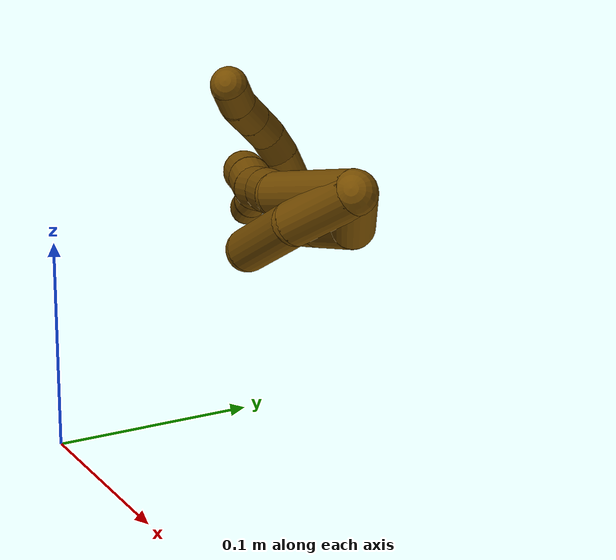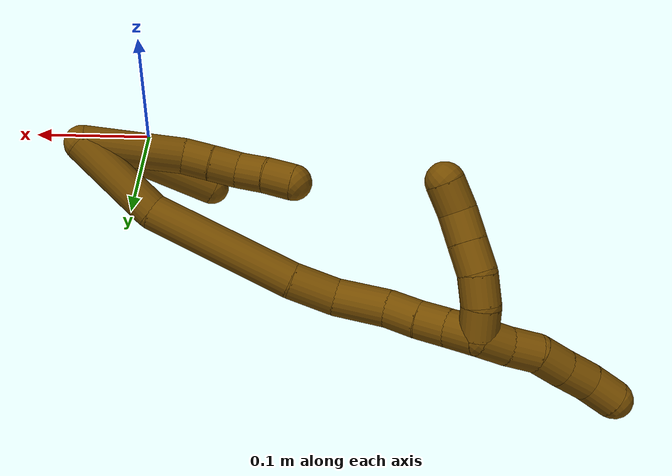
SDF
<sdf version="1.7">
 <world name="default">
  <model name="12">
   <static>0</static>
   <link name="12">
    <collision name="collision-cylinder-e_1_2_8">
     <pose>-0.020462 0.013772 0.024603 -0.510297 -0.627791 0.168945</pose>
     <geometry><cylinder><radius>0.0125</radius><length>0.069676</length></cylinder></geometry>
     <surface>
      <friction><ode><mu>1.16</mu><mu2>1.16</mu2><slip1>0</slip1><slip2>0</slip2></ode></friction>
      <contact><ode><kp>1e+06</kp><kd>1</kd><max_vel>0</max_vel><min_depth>0.001</min_depth></ode></contact>
     </surface>
    </collision>
    <visual name="visual-cylinder-e_1_2_8">
     <pose>-0.020462 0.013772 0.024603 -0.510297 -0.627791 0.168945</pose>
     <geometry><cylinder><radius>0.0125</radius><length>0.069676</length></cylinder></geometry>
     <material><ambient>0.466667 0.301961 0 1</ambient></material>
    </visual>
    <collision name="collision-cylinder-e_2_8_9">
     <pose>-0.046044 0.028628 0.057856 -0.124756 -0.530951 0.033961</pose>
     <geometry><cylinder><radius>0.0125</radius><length>0.02022</length></cylinder></geometry>
     <surface>
      <friction><ode><mu>1.16</mu><mu2>1.16</mu2><slip1>0</slip1><slip2>0</slip2></ode></friction>
      <contact><ode><kp>1e+06</kp><kd>1</kd><max_vel>0</max_vel><min_depth>0.001</min_depth></ode></contact>
     </surface>
    </collision>
    <visual name="visual-cylinder-e_2_8_9">
     <pose>-0.046044 0.028628 0.057856 -0.124756 -0.530951 0.033961</pose>
     <geometry><cylinder><radius>0.0125</radius><length>0.02022</length></cylinder></geometry>
     <material><ambient>0.466667 0.301961 0 1</ambient></material>
    </visual>
    <collision name="collision-cylinder-e_3_9_10">
     <pose>-0.0562 0.031491 0.074982 -0.20677 -0.526797 0.055943</pose>
     <geometry><cylinder><radius>0.0125</radius><length>0.020037</length></cylinder></geometry>
     <surface>
      <friction><ode><mu>1.16</mu><mu2>1.16</mu2><slip1>0</slip1><slip2>0</slip2></ode></friction>
      <contact><ode><kp>1e+06</kp><kd>1</kd><max_vel>0</max_vel><min_depth>0.001</min_depth></ode></contact>
     </surface>
    </collision>
    <visual name="visual-cylinder-e_3_9_10">
     <pose>-0.0562 0.031491 0.074982 -0.20677 -0.526797 0.055943</pose>
     <geometry><cylinder><radius>0.0125</radius><length>0.020037</length></cylinder></geometry>
     <material><ambient>0.466667 0.301961 0 1</ambient></material>
    </visual>
    <collision name="collision-cylinder-e_4_10_11">
     <pose>-0.066782 0.032289 0.091741 0.117707 -0.586751 -0.035596</pose>
     <geometry><cylinder><radius>0.0125</radius><length>0.020031</length></cylinder></geometry>
     <surface>
      <friction><ode><mu>1.16</mu><mu2>1.16</mu2><slip1>0</slip1><slip2>0</slip2></ode></friction>
      <contact><ode><kp>1e+06</kp><kd>1</kd><max_vel>0</max_vel><min_depth>0.001</min_depth></ode></contact>
     </surface>
    </collision>
    <visual name="visual-cylinder-e_4_10_11">
     <pose>-0.066782 0.032289 0.091741 0.117707 -0.586751 -0.035596</pose>
     <geometry><cylinder><radius>0.0125</radius><length>0.020031</length></cylinder></geometry>
     <material><ambient>0.466667 0.301961 0 1</ambient></material>
    </visual>
    <collision name="collision-cylinder-e_5_11_6">
     <pose>-0.07735 0.03118 0.108691 0.0149 -0.525149 -0.004005</pose>
     <geometry><cylinder><radius>0.0125</radius><length>0.020037</length></cylinder></geometry>
     <surface>
      <friction><ode><mu>1.16</mu><mu2>1.16</mu2><slip1>0</slip1><slip2>0</slip2></ode></friction>
      <contact><ode><kp>1e+06</kp><kd>1</kd><max_vel>0</max_vel><min_depth>0.001</min_depth></ode></contact>
     </surface>
    </collision>
    <visual name="visual-cylinder-e_5_11_6">
     <pose>-0.07735 0.03118 0.108691 0.0149 -0.525149 -0.004005</pose>
     <geometry><cylinder><radius>0.0125</radius><length>0.020037</length></cylinder></geometry>
     <material><ambient>0.466667 0.301961 0 1</ambient></material>
    </visual>
    <collision name="collision-cylinder-e_1_2_12">
     <pose>-0.008964 0.016349 0.01353 -0.879476 -0.399659 0.189993</pose>
     <geometry><cylinder><radius>0.0125</radius><length>0.046075</length></cylinder></geometry>
     <surface>
      <friction><ode><mu>1.16</mu><mu2>1.16</mu2><slip1>0</slip1><slip2>0</slip2></ode></friction>
      <contact><ode><kp>1e+06</kp><kd>1</kd><max_vel>0</max_vel><min_depth>0.001</min_depth></ode></contact>
     </surface>
    </collision>
    <visual name="visual-cylinder-e_1_2_12">
     <pose>-0.008964 0.016349 0.01353 -0.879476 -0.399659 0.189993</pose>
     <geometry><cylinder><radius>0.0125</radius><length>0.046075</length></cylinder></geometry>
     <material><ambient>0.466667 0.301961 0 1</ambient></material>
    </visual>
    <collision name="collision-cylinder-e_2_12_5">
     <pose>-0.026792 0.046723 0.048314 -0.583263 -0.334989 0.101424</pose>
     <geometry><cylinder><radius>0.0125</radius><length>0.053925</length></cylinder></geometry>
     <surface>
      <friction><ode><mu>1.16</mu><mu2>1.16</mu2><slip1>0</slip1><slip2>0</slip2></ode></friction>
      <contact><ode><kp>1e+06</kp><kd>1</kd><max_vel>0</max_vel><min_depth>0.001</min_depth></ode></contact>
     </surface>
    </collision>
    <visual name="visual-cylinder-e_2_12_5">
     <pose>-0.026792 0.046723 0.048314 -0.583263 -0.334989 0.101424</pose>
     <geometry><cylinder><radius>0.0125</radius><length>0.053925</length></cylinder></geometry>
     <material><ambient>0.466667 0.301961 0 1</ambient></material>
    </visual>
    <collision name="collision-cylinder-e_1_2_13">
     <pose>-0.000817 0.005607 0.033389 -0.166385 -0.024139 0.002013</pose>
     <geometry><cylinder><radius>0.0125</radius><length>0.067732</length></cylinder></geometry>
     <surface>
      <friction><ode><mu>1.16</mu><mu2>1.16</mu2><slip1>0</slip1><slip2>0</slip2></ode></friction>
      <contact><ode><kp>1e+06</kp><kd>1</kd><max_vel>0</max_vel><min_depth>0.001</min_depth></ode></contact>
     </surface>
    </collision>
    <visual name="visual-cylinder-e_1_2_13">
     <pose>-0.000817 0.005607 0.033389 -0.166385 -0.024139 0.002013</pose>
     <geometry><cylinder><radius>0.0125</radius><length>0.067732</length></cylinder></geometry>
     <material><ambient>0.466667 0.301961 0 1</ambient></material>
    </visual>
    <collision name="collision-cylinder-e_2_13_14">
     <pose>-0.018898 0.017384 0.11576 -0.125301 -0.336384 0.021303</pose>
     <geometry><cylinder><radius>0.0125</radius><length>0.104602</length></cylinder></geometry>
     <surface>
      <friction><ode><mu>1.16</mu><mu2>1.16</mu2><slip1>0</slip1><slip2>0</slip2></ode></friction>
      <contact><ode><kp>1e+06</kp><kd>1</kd><max_vel>0</max_vel><min_depth>0.001</min_depth></ode></contact>
     </surface>
    </collision>
    <visual name="visual-cylinder-e_2_13_14">
     <pose>-0.018898 0.017384 0.11576 -0.125301 -0.336384 0.021303</pose>
     <geometry><cylinder><radius>0.0125</radius><length>0.104602</length></cylinder></geometry>
     <material><ambient>0.466667 0.301961 0 1</ambient></material>
    </visual>
    <collision name="collision-cylinder-e_3_14_15">
     <pose>-0.042645 0.026569 0.178572 -0.214663 -0.429555 0.046999</pose>
     <geometry><cylinder><radius>0.0125</radius><length>0.031136</length></cylinder></geometry>
     <surface>
      <friction><ode><mu>1.16</mu><mu2>1.16</mu2><slip1>0</slip1><slip2>0</slip2></ode></friction>
      <contact><ode><kp>1e+06</kp><kd>1</kd><max_vel>0</max_vel><min_depth>0.001</min_depth></ode></contact>
     </surface>
    </collision>
    <visual name="visual-cylinder-e_3_14_15">
     <pose>-0.042645 0.026569 0.178572 -0.214663 -0.429555 0.046999</pose>
     <geometry><cylinder><radius>0.0125</radius><length>0.031136</length></cylinder></geometry>
     <material><ambient>0.466667 0.301961 0 1</ambient></material>
    </visual>
    <collision name="collision-cylinder-e_4_15_16">
     <pose>-0.05903 0.028581 0.207031 0.068461 -0.593907 -0.020956</pose>
     <geometry><cylinder><radius>0.0125</radius><length>0.035388</length></cylinder></geometry>
     <surface>
      <friction><ode><mu>1.16</mu><mu2>1.16</mu2><slip1>0</slip1><slip2>0</slip2></ode></friction>
      <contact><ode><kp>1e+06</kp><kd>1</kd><max_vel>0</max_vel><min_depth>0.001</min_depth></ode></contact>
     </surface>
    </collision>
    <visual name="visual-cylinder-e_4_15_16">
     <pose>-0.05903 0.028581 0.207031 0.068461 -0.593907 -0.020956</pose>
     <geometry><cylinder><radius>0.0125</radius><length>0.035388</length></cylinder></geometry>
     <material><ambient>0.466667 0.301961 0 1</ambient></material>
    </visual>
    <collision name="collision-cylinder-e_5_16_17">
     <pose>-0.07363 0.025407 0.230856 0.231845 -0.461378 -0.054685</pose>
     <geometry><cylinder><radius>0.0125</radius><length>0.021104</length></cylinder></geometry>
     <surface>
      <friction><ode><mu>1.16</mu><mu2>1.16</mu2><slip1>0</slip1><slip2>0</slip2></ode></friction>
      <contact><ode><kp>1e+06</kp><kd>1</kd><max_vel>0</max_vel><min_depth>0.001</min_depth></ode></contact>
     </surface>
    </collision>
    <visual name="visual-cylinder-e_5_16_17">
     <pose>-0.07363 0.025407 0.230856 0.231845 -0.461378 -0.054685</pose>
     <geometry><cylinder><radius>0.0125</radius><length>0.021104</length></cylinder></geometry>
     <material><ambient>0.466667 0.301961 0 1</ambient></material>
    </visual>
    <collision name="collision-cylinder-e_6_17_18">
     <pose>-0.083409 0.021607 0.248513 0.190199 -0.532924 -0.052061</pose>
     <geometry><cylinder><radius>0.0125</radius><length>0.020007</length></cylinder></geometry>
     <surface>
      <friction><ode><mu>1.16</mu><mu2>1.16</mu2><slip1>0</slip1><slip2>0</slip2></ode></friction>
      <contact><ode><kp>1e+06</kp><kd>1</kd><max_vel>0</max_vel><min_depth>0.001</min_depth></ode></contact>
     </surface>
    </collision>
    <visual name="visual-cylinder-e_6_17_18">
     <pose>-0.083409 0.021607 0.248513 0.190199 -0.532924 -0.052061</pose>
     <geometry><cylinder><radius>0.0125</radius><length>0.020007</length></cylinder></geometry>
     <material><ambient>0.466667 0.301961 0 1</ambient></material>
    </visual>
    <collision name="collision-cylinder-e_7_18_1">
     <pose>-0.093333 0.015967 0.26477 0.475207 -0.504483 -0.124672</pose>
     <geometry><cylinder><radius>0.0125</radius><length>0.02003</length></cylinder></geometry>
     <surface>
      <friction><ode><mu>1.16</mu><mu2>1.16</mu2><slip1>0</slip1><slip2>0</slip2></ode></friction>
      <contact><ode><kp>1e+06</kp><kd>1</kd><max_vel>0</max_vel><min_depth>0.001</min_depth></ode></contact>
     </surface>
    </collision>
    <visual name="visual-cylinder-e_7_18_1">
     <pose>-0.093333 0.015967 0.26477 0.475207 -0.504483 -0.124672</pose>
     <geometry><cylinder><radius>0.0125</radius><length>0.02003</length></cylinder></geometry>
     <material><ambient>0.466667 0.301961 0 1</ambient></material>
    </visual>
    <collision name="collision-cylinder-e_1_1_19">
     <pose>-0.105505 0.00874 0.266573 2.64917 -0.82294 -2.09657</pose>
     <geometry><cylinder><radius>0.0125</radius><length>0.02</length></cylinder></geometry>
     <surface>
      <friction><ode><mu>1.16</mu><mu2>1.16</mu2><slip1>0</slip1><slip2>0</slip2></ode></friction>
      <contact><ode><kp>1e+06</kp><kd>1</kd><max_vel>0</max_vel><min_depth>0.001</min_depth></ode></contact>
     </surface>
    </collision>
    <visual name="visual-cylinder-e_1_1_19">
     <pose>-0.105505 0.00874 0.266573 2.64917 -0.82294 -2.09657</pose>
     <geometry><cylinder><radius>0.0125</radius><length>0.02</length></cylinder></geometry>
     <material><ambient>0.466667 0.301961 0 1</ambient></material>
    </visual>
    <collision name="collision-cylinder-e_2_19_20">
     <pose>-0.119053 0.003981 0.252901 2.94318 -0.670826 -2.58533</pose>
     <geometry><cylinder><radius>0.0125</radius><length>0.02</length></cylinder></geometry>
     <surface>
      <friction><ode><mu>1.16</mu><mu2>1.16</mu2><slip1>0</slip1><slip2>0</slip2></ode></friction>
      <contact><ode><kp>1e+06</kp><kd>1</kd><max_vel>0</max_vel><min_depth>0.001</min_depth></ode></contact>
     </surface>
    </collision>
    <visual name="visual-cylinder-e_2_19_20">
     <pose>-0.119053 0.003981 0.252901 2.94318 -0.670826 -2.58533</pose>
     <geometry><cylinder><radius>0.0125</radius><length>0.02</length></cylinder></geometry>
     <material><ambient>0.466667 0.301961 0 1</ambient></material>
    </visual>
    <collision name="collision-cylinder-e_3_20_21">
     <pose>-0.129886 0.002465 0.236351 -3.13841 -0.479929 3.12857</pose>
     <geometry><cylinder><radius>0.0125</radius><length>0.02</length></cylinder></geometry>
     <surface>
      <friction><ode><mu>1.16</mu><mu2>1.16</mu2><slip1>0</slip1><slip2>0</slip2></ode></friction>
      <contact><ode><kp>1e+06</kp><kd>1</kd><max_vel>0</max_vel><min_depth>0.001</min_depth></ode></contact>
     </surface>
    </collision>
    <visual name="visual-cylinder-e_3_20_21">
     <pose>-0.129886 0.002465 0.236351 -3.13841 -0.479929 3.12857</pose>
     <geometry><cylinder><radius>0.0125</radius><length>0.02</length></cylinder></geometry>
     <material><ambient>0.466667 0.301961 0 1</ambient></material>
    </visual>
    <collision name="collision-cylinder-e_4_21_22">
     <pose>-0.139164 0.002542 0.218634 -3.13612 -0.484849 3.11947</pose>
     <geometry><cylinder><radius>0.0125</radius><length>0.02</length></cylinder></geometry>
     <surface>
      <friction><ode><mu>1.16</mu><mu2>1.16</mu2><slip1>0</slip1><slip2>0</slip2></ode></friction>
      <contact><ode><kp>1e+06</kp><kd>1</kd><max_vel>0</max_vel><min_depth>0.001</min_depth></ode></contact>
     </surface>
    </collision>
    <visual name="visual-cylinder-e_4_21_22">
     <pose>-0.139164 0.002542 0.218634 -3.13612 -0.484849 3.11947</pose>
     <geometry><cylinder><radius>0.0125</radius><length>0.02</length></cylinder></geometry>
     <material><ambient>0.466667 0.301961 0 1</ambient></material>
    </visual>
    <collision name="collision-cylinder-e_5_22_4">
     <pose>-0.147612 0.000309 0.200817 2.89251 -0.388376 -2.00785</pose>
     <geometry><cylinder><radius>0.0125</radius><length>0.02</length></cylinder></geometry>
     <surface>
      <friction><ode><mu>1.16</mu><mu2>1.16</mu2><slip1>0</slip1><slip2>0</slip2></ode></friction>
      <contact><ode><kp>1e+06</kp><kd>1</kd><max_vel>0</max_vel><min_depth>0.001</min_depth></ode></contact>
     </surface>
    </collision>
    <visual name="visual-cylinder-e_5_22_4">
     <pose>-0.147612 0.000309 0.200817 2.89251 -0.388376 -2.00785</pose>
     <geometry><cylinder><radius>0.0125</radius><length>0.02</length></cylinder></geometry>
     <material><ambient>0.466667 0.301961 0 1</ambient></material>
    </visual>
    <collision name="collision-cylinder-e_1_1_23">
     <pose>-0.102208 0.016247 0.280647 -0.488143 -0.415234 0.104824</pose>
     <geometry><cylinder><radius>0.0125</radius><length>0.02</length></cylinder></geometry>
     <surface>
      <friction><ode><mu>1.16</mu><mu2>1.16</mu2><slip1>0</slip1><slip2>0</slip2></ode></friction>
      <contact><ode><kp>1e+06</kp><kd>1</kd><max_vel>0</max_vel><min_depth>0.001</min_depth></ode></contact>
     </surface>
    </collision>
    <visual name="visual-cylinder-e_1_1_23">
     <pose>-0.102208 0.016247 0.280647 -0.488143 -0.415234 0.104824</pose>
     <geometry><cylinder><radius>0.0125</radius><length>0.02</length></cylinder></geometry>
     <material><ambient>0.466667 0.301961 0 1</ambient></material>
    </visual>
    <collision name="collision-cylinder-e_2_23_24">
     <pose>-0.111201 0.023789 0.296781 -0.383697 -0.518956 0.103034</pose>
     <geometry><cylinder><radius>0.0125</radius><length>0.02</length></cylinder></geometry>
     <surface>
      <friction><ode><mu>1.16</mu><mu2>1.16</mu2><slip1>0</slip1><slip2>0</slip2></ode></friction>
      <contact><ode><kp>1e+06</kp><kd>1</kd><max_vel>0</max_vel><min_depth>0.001</min_depth></ode></contact>
     </surface>
    </collision>
    <visual name="visual-cylinder-e_2_23_24">
     <pose>-0.111201 0.023789 0.296781 -0.383697 -0.518956 0.103034</pose>
     <geometry><cylinder><radius>0.0125</radius><length>0.02</length></cylinder></geometry>
     <material><ambient>0.466667 0.301961 0 1</ambient></material>
    </visual>
    <collision name="collision-cylinder-e_3_24_25">
     <pose>-0.118358 0.031373 0.313573 -0.460267 -0.221516 0.052099</pose>
     <geometry><cylinder><radius>0.0125</radius><length>0.02</length></cylinder></geometry>
     <surface>
      <friction><ode><mu>1.16</mu><mu2>1.16</mu2><slip1>0</slip1><slip2>0</slip2></ode></friction>
      <contact><ode><kp>1e+06</kp><kd>1</kd><max_vel>0</max_vel><min_depth>0.001</min_depth></ode></contact>
     </surface>
    </collision>
    <visual name="visual-cylinder-e_3_24_25">
     <pose>-0.118358 0.031373 0.313573 -0.460267 -0.221516 0.052099</pose>
     <geometry><cylinder><radius>0.0125</radius><length>0.02</length></cylinder></geometry>
     <material><ambient>0.466667 0.301961 0 1</ambient></material>
    </visual>
    <collision name="collision-cylinder-e_4_25_26">
     <pose>-0.123147 0.039852 0.331037 -0.443651 -0.262125 0.059442</pose>
     <geometry><cylinder><radius>0.0125</radius><length>0.02</length></cylinder></geometry>
     <surface>
      <friction><ode><mu>1.16</mu><mu2>1.16</mu2><slip1>0</slip1><slip2>0</slip2></ode></friction>
      <contact><ode><kp>1e+06</kp><kd>1</kd><max_vel>0</max_vel><min_depth>0.001</min_depth></ode></contact>
     </surface>
    </collision>
    <visual name="visual-cylinder-e_4_25_26">
     <pose>-0.123147 0.039852 0.331037 -0.443651 -0.262125 0.059442</pose>
     <geometry><cylinder><radius>0.0125</radius><length>0.02</length></cylinder></geometry>
     <material><ambient>0.466667 0.301961 0 1</ambient></material>
    </visual>
    <collision name="collision-cylinder-e_5_26_3">
     <pose>-0.127483 0.046977 0.349145 -0.307457 -0.175374 0.027243</pose>
     <geometry><cylinder><radius>0.0125</radius><length>0.02</length></cylinder></geometry>
     <surface>
      <friction><ode><mu>1.16</mu><mu2>1.16</mu2><slip1>0</slip1><slip2>0</slip2></ode></friction>
      <contact><ode><kp>1e+06</kp><kd>1</kd><max_vel>0</max_vel><min_depth>0.001</min_depth></ode></contact>
     </surface>
    </collision>
    <visual name="visual-cylinder-e_5_26_3">
     <pose>-0.127483 0.046977 0.349145 -0.307457 -0.175374 0.027243</pose>
     <geometry><cylinder><radius>0.0125</radius><length>0.02</length></cylinder></geometry>
     <material><ambient>0.466667 0.301961 0 1</ambient></material>
    </visual>
    <collision name="collision-sphere-3">
     <pose>-0.129227 0.049957 0.35853 0 -0 0</pose>
     <geometry><sphere><radius>0.0125</radius></sphere></geometry>
     <surface>
      <friction><ode><mu>1.16</mu><mu2>1.16</mu2><slip1>0</slip1><slip2>0</slip2></ode></friction>
      <contact><ode><kp>1e+06</kp><kd>1</kd><max_vel>0</max_vel><min_depth>0.001</min_depth></ode></contact>
     </surface>
    </collision>
    <visual name="visual-sphere-3">
     <pose>-0.129227 0.049957 0.35853 0 -0 0</pose>
     <geometry><sphere><radius>0.0125</radius></sphere></geometry>
     <material><ambient>0.466667 0.301961 0 1</ambient></material>
    </visual>
    <collision name="collision-sphere-26">
     <pose>-0.125738 0.043998 0.339761 0 -0 0</pose>
     <geometry><sphere><radius>0.0125</radius></sphere></geometry>
     <surface>
      <friction><ode><mu>1.16</mu><mu2>1.16</mu2><slip1>0</slip1><slip2>0</slip2></ode></friction>
      <contact><ode><kp>1e+06</kp><kd>1</kd><max_vel>0</max_vel><min_depth>0.001</min_depth></ode></contact>
     </surface>
    </collision>
    <visual name="visual-sphere-26">
     <pose>-0.125738 0.043998 0.339761 0 -0 0</pose>
     <geometry><sphere><radius>0.0125</radius></sphere></geometry>
     <material><ambient>0.466667 0.301961 0 1</ambient></material>
    </visual>
    <collision name="collision-sphere-25">
     <pose>-0.120555 0.035706 0.322314 0 -0 0</pose>
     <geometry><sphere><radius>0.0125</radius></sphere></geometry>
     <surface>
      <friction><ode><mu>1.16</mu><mu2>1.16</mu2><slip1>0</slip1><slip2>0</slip2></ode></friction>
      <contact><ode><kp>1e+06</kp><kd>1</kd><max_vel>0</max_vel><min_depth>0.001</min_depth></ode></contact>
     </surface>
    </collision>
    <visual name="visual-sphere-25">
     <pose>-0.120555 0.035706 0.322314 0 -0 0</pose>
     <geometry><sphere><radius>0.0125</radius></sphere></geometry>
     <material><ambient>0.466667 0.301961 0 1</ambient></material>
    </visual>
    <collision name="collision-sphere-24">
     <pose>-0.116161 0.027039 0.304833 0 -0 0</pose>
     <geometry><sphere><radius>0.0125</radius></sphere></geometry>
     <surface>
      <friction><ode><mu>1.16</mu><mu2>1.16</mu2><slip1>0</slip1><slip2>0</slip2></ode></friction>
      <contact><ode><kp>1e+06</kp><kd>1</kd><max_vel>0</max_vel><min_depth>0.001</min_depth></ode></contact>
     </surface>
    </collision>
    <visual name="visual-sphere-24">
     <pose>-0.116161 0.027039 0.304833 0 -0 0</pose>
     <geometry><sphere><radius>0.0125</radius></sphere></geometry>
     <material><ambient>0.466667 0.301961 0 1</ambient></material>
    </visual>
    <collision name="collision-sphere-23">
     <pose>-0.106242 0.020538 0.288729 0 -0 0</pose>
     <geometry><sphere><radius>0.0125</radius></sphere></geometry>
     <surface>
      <friction><ode><mu>1.16</mu><mu2>1.16</mu2><slip1>0</slip1><slip2>0</slip2></ode></friction>
      <contact><ode><kp>1e+06</kp><kd>1</kd><max_vel>0</max_vel><min_depth>0.001</min_depth></ode></contact>
     </surface>
    </collision>
    <visual name="visual-sphere-23">
     <pose>-0.106242 0.020538 0.288729 0 -0 0</pose>
     <geometry><sphere><radius>0.0125</radius></sphere></geometry>
     <material><ambient>0.466667 0.301961 0 1</ambient></material>
    </visual>
    <collision name="collision-sphere-4">
     <pose>-0.151399 -0.001973 0.191847 0 -0 0</pose>
     <geometry><sphere><radius>0.0125</radius></sphere></geometry>
     <surface>
      <friction><ode><mu>1.16</mu><mu2>1.16</mu2><slip1>0</slip1><slip2>0</slip2></ode></friction>
      <contact><ode><kp>1e+06</kp><kd>1</kd><max_vel>0</max_vel><min_depth>0.001</min_depth></ode></contact>
     </surface>
    </collision>
    <visual name="visual-sphere-4">
     <pose>-0.151399 -0.001973 0.191847 0 -0 0</pose>
     <geometry><sphere><radius>0.0125</radius></sphere></geometry>
     <material><ambient>0.466667 0.301961 0 1</ambient></material>
    </visual>
    <collision name="collision-sphere-22">
     <pose>-0.143825 0.002591 0.209787 0 -0 0</pose>
     <geometry><sphere><radius>0.0125</radius></sphere></geometry>
     <surface>
      <friction><ode><mu>1.16</mu><mu2>1.16</mu2><slip1>0</slip1><slip2>0</slip2></ode></friction>
      <contact><ode><kp>1e+06</kp><kd>1</kd><max_vel>0</max_vel><min_depth>0.001</min_depth></ode></contact>
     </surface>
    </collision>
    <visual name="visual-sphere-22">
     <pose>-0.143825 0.002591 0.209787 0 -0 0</pose>
     <geometry><sphere><radius>0.0125</radius></sphere></geometry>
     <material><ambient>0.466667 0.301961 0 1</ambient></material>
    </visual>
    <collision name="collision-sphere-21">
     <pose>-0.134503 0.002494 0.227481 0 -0 0</pose>
     <geometry><sphere><radius>0.0125</radius></sphere></geometry>
     <surface>
      <friction><ode><mu>1.16</mu><mu2>1.16</mu2><slip1>0</slip1><slip2>0</slip2></ode></friction>
      <contact><ode><kp>1e+06</kp><kd>1</kd><max_vel>0</max_vel><min_depth>0.001</min_depth></ode></contact>
     </surface>
    </collision>
    <visual name="visual-sphere-21">
     <pose>-0.134503 0.002494 0.227481 0 -0 0</pose>
     <geometry><sphere><radius>0.0125</radius></sphere></geometry>
     <material><ambient>0.466667 0.301961 0 1</ambient></material>
    </visual>
    <collision name="collision-sphere-20">
     <pose>-0.125269 0.002437 0.245222 0 -0 0</pose>
     <geometry><sphere><radius>0.0125</radius></sphere></geometry>
     <surface>
      <friction><ode><mu>1.16</mu><mu2>1.16</mu2><slip1>0</slip1><slip2>0</slip2></ode></friction>
      <contact><ode><kp>1e+06</kp><kd>1</kd><max_vel>0</max_vel><min_depth>0.001</min_depth></ode></contact>
     </surface>
    </collision>
    <visual name="visual-sphere-20">
     <pose>-0.125269 0.002437 0.245222 0 -0 0</pose>
     <geometry><sphere><radius>0.0125</radius></sphere></geometry>
     <material><ambient>0.466667 0.301961 0 1</ambient></material>
    </visual>
    <collision name="collision-sphere-6">
     <pose>-0.082372 0.031051 0.117358 0 -0 0</pose>
     <geometry><sphere><radius>0.0125</radius></sphere></geometry>
     <surface>
      <friction><ode><mu>1.16</mu><mu2>1.16</mu2><slip1>0</slip1><slip2>0</slip2></ode></friction>
      <contact><ode><kp>1e+06</kp><kd>1</kd><max_vel>0</max_vel><min_depth>0.001</min_depth></ode></contact>
     </surface>
    </collision>
    <visual name="visual-sphere-6">
     <pose>-0.082372 0.031051 0.117358 0 -0 0</pose>
     <geometry><sphere><radius>0.0125</radius></sphere></geometry>
     <material><ambient>0.466667 0.301961 0 1</ambient></material>
    </visual>
    <collision name="collision-sphere-11">
     <pose>-0.072327 0.03131 0.100023 0 -0 0</pose>
     <geometry><sphere><radius>0.0125</radius></sphere></geometry>
     <surface>
      <friction><ode><mu>1.16</mu><mu2>1.16</mu2><slip1>0</slip1><slip2>0</slip2></ode></friction>
      <contact><ode><kp>1e+06</kp><kd>1</kd><max_vel>0</max_vel><min_depth>0.001</min_depth></ode></contact>
     </surface>
    </collision>
    <visual name="visual-sphere-11">
     <pose>-0.072327 0.03131 0.100023 0 -0 0</pose>
     <geometry><sphere><radius>0.0125</radius></sphere></geometry>
     <material><ambient>0.466667 0.301961 0 1</ambient></material>
    </visual>
    <collision name="collision-sphere-10">
     <pose>-0.061237 0.033269 0.083458 0 -0 0</pose>
     <geometry><sphere><radius>0.0125</radius></sphere></geometry>
     <surface>
      <friction><ode><mu>1.16</mu><mu2>1.16</mu2><slip1>0</slip1><slip2>0</slip2></ode></friction>
      <contact><ode><kp>1e+06</kp><kd>1</kd><max_vel>0</max_vel><min_depth>0.001</min_depth></ode></contact>
     </surface>
    </collision>
    <visual name="visual-sphere-10">
     <pose>-0.061237 0.033269 0.083458 0 -0 0</pose>
     <geometry><sphere><radius>0.0125</radius></sphere></geometry>
     <material><ambient>0.466667 0.301961 0 1</ambient></material>
    </visual>
    <collision name="collision-sphere-9">
     <pose>-0.051163 0.029713 0.066507 0 -0 0</pose>
     <geometry><sphere><radius>0.0125</radius></sphere></geometry>
     <surface>
      <friction><ode><mu>1.16</mu><mu2>1.16</mu2><slip1>0</slip1><slip2>0</slip2></ode></friction>
      <contact><ode><kp>1e+06</kp><kd>1</kd><max_vel>0</max_vel><min_depth>0.001</min_depth></ode></contact>
     </surface>
    </collision>
    <visual name="visual-sphere-9">
     <pose>-0.051163 0.029713 0.066507 0 -0 0</pose>
     <geometry><sphere><radius>0.0125</radius></sphere></geometry>
     <material><ambient>0.466667 0.301961 0 1</ambient></material>
    </visual>
    <collision name="collision-sphere-2">
     <geometry><sphere><radius>0.0125</radius></sphere></geometry>
     <surface>
      <friction><ode><mu>1.16</mu><mu2>1.16</mu2><slip1>0</slip1><slip2>0</slip2></ode></friction>
      <contact><ode><kp>1e+06</kp><kd>1</kd><max_vel>0</max_vel><min_depth>0.001</min_depth></ode></contact>
     </surface>
    </collision>
    <visual name="visual-sphere-2">
     <geometry><sphere><radius>0.0125</radius></sphere></geometry>
     <material><ambient>0.466667 0.301961 0 1</ambient></material>
    </visual>
    <collision name="collision-sphere-19">
     <pose>-0.112836 0.005525 0.260581 0 -0 0</pose>
     <geometry><sphere><radius>0.0125</radius></sphere></geometry>
     <surface>
      <friction><ode><mu>1.16</mu><mu2>1.16</mu2><slip1>0</slip1><slip2>0</slip2></ode></friction>
      <contact><ode><kp>1e+06</kp><kd>1</kd><max_vel>0</max_vel><min_depth>0.001</min_depth></ode></contact>
     </surface>
    </collision>
    <visual name="visual-sphere-19">
     <pose>-0.112836 0.005525 0.260581 0 -0 0</pose>
     <geometry><sphere><radius>0.0125</radius></sphere></geometry>
     <material><ambient>0.466667 0.301961 0 1</ambient></material>
    </visual>
    <collision name="collision-sphere-8">
     <pose>-0.040924 0.027543 0.049206 0 -0 0</pose>
     <geometry><sphere><radius>0.0125</radius></sphere></geometry>
     <surface>
      <friction><ode><mu>1.16</mu><mu2>1.16</mu2><slip1>0</slip1><slip2>0</slip2></ode></friction>
      <contact><ode><kp>1e+06</kp><kd>1</kd><max_vel>0</max_vel><min_depth>0.001</min_depth></ode></contact>
     </surface>
    </collision>
    <visual name="visual-sphere-8">
     <pose>-0.040924 0.027543 0.049206 0 -0 0</pose>
     <geometry><sphere><radius>0.0125</radius></sphere></geometry>
     <material><ambient>0.466667 0.301961 0 1</ambient></material>
    </visual>
    <collision name="collision-sphere-12">
     <pose>-0.017928 0.032699 0.02706 0 -0 0</pose>
     <geometry><sphere><radius>0.0125</radius></sphere></geometry>
     <surface>
      <friction><ode><mu>1.16</mu><mu2>1.16</mu2><slip1>0</slip1><slip2>0</slip2></ode></friction>
      <contact><ode><kp>1e+06</kp><kd>1</kd><max_vel>0</max_vel><min_depth>0.001</min_depth></ode></contact>
     </surface>
    </collision>
    <visual name="visual-sphere-12">
     <pose>-0.017928 0.032699 0.02706 0 -0 0</pose>
     <geometry><sphere><radius>0.0125</radius></sphere></geometry>
     <material><ambient>0.466667 0.301961 0 1</ambient></material>
    </visual>
    <collision name="collision-sphere-5">
     <pose>-0.035656 0.060747 0.069568 0 -0 0</pose>
     <geometry><sphere><radius>0.0125</radius></sphere></geometry>
     <surface>
      <friction><ode><mu>1.16</mu><mu2>1.16</mu2><slip1>0</slip1><slip2>0</slip2></ode></friction>
      <contact><ode><kp>1e+06</kp><kd>1</kd><max_vel>0</max_vel><min_depth>0.001</min_depth></ode></contact>
     </surface>
    </collision>
    <visual name="visual-sphere-5">
     <pose>-0.035656 0.060747 0.069568 0 -0 0</pose>
     <geometry><sphere><radius>0.0125</radius></sphere></geometry>
     <material><ambient>0.466667 0.301961 0 1</ambient></material>
    </visual>
    <collision name="collision-sphere-13">
     <pose>-0.001635 0.011214 0.066778 0 -0 0</pose>
     <geometry><sphere><radius>0.0125</radius></sphere></geometry>
     <surface>
      <friction><ode><mu>1.16</mu><mu2>1.16</mu2><slip1>0</slip1><slip2>0</slip2></ode></friction>
      <contact><ode><kp>1e+06</kp><kd>1</kd><max_vel>0</max_vel><min_depth>0.001</min_depth></ode></contact>
     </surface>
    </collision>
    <visual name="visual-sphere-13">
     <pose>-0.001635 0.011214 0.066778 0 -0 0</pose>
     <geometry><sphere><radius>0.0125</radius></sphere></geometry>
     <material><ambient>0.466667 0.301961 0 1</ambient></material>
    </visual>
    <collision name="collision-sphere-14">
     <pose>-0.036161 0.023554 0.164743 0 -0 0</pose>
     <geometry><sphere><radius>0.0125</radius></sphere></geometry>
     <surface>
      <friction><ode><mu>1.16</mu><mu2>1.16</mu2><slip1>0</slip1><slip2>0</slip2></ode></friction>
      <contact><ode><kp>1e+06</kp><kd>1</kd><max_vel>0</max_vel><min_depth>0.001</min_depth></ode></contact>
     </surface>
    </collision>
    <visual name="visual-sphere-14">
     <pose>-0.036161 0.023554 0.164743 0 -0 0</pose>
     <geometry><sphere><radius>0.0125</radius></sphere></geometry>
     <material><ambient>0.466667 0.301961 0 1</ambient></material>
    </visual>
    <collision name="collision-sphere-15">
     <pose>-0.049129 0.029584 0.192401 0 -0 0</pose>
     <geometry><sphere><radius>0.0125</radius></sphere></geometry>
     <surface>
      <friction><ode><mu>1.16</mu><mu2>1.16</mu2><slip1>0</slip1><slip2>0</slip2></ode></friction>
      <contact><ode><kp>1e+06</kp><kd>1</kd><max_vel>0</max_vel><min_depth>0.001</min_depth></ode></contact>
     </surface>
    </collision>
    <visual name="visual-sphere-15">
     <pose>-0.049129 0.029584 0.192401 0 -0 0</pose>
     <geometry><sphere><radius>0.0125</radius></sphere></geometry>
     <material><ambient>0.466667 0.301961 0 1</ambient></material>
    </visual>
    <collision name="collision-sphere-16">
     <pose>-0.068932 0.027578 0.221661 0 -0 0</pose>
     <geometry><sphere><radius>0.0125</radius></sphere></geometry>
     <surface>
      <friction><ode><mu>1.16</mu><mu2>1.16</mu2><slip1>0</slip1><slip2>0</slip2></ode></friction>
      <contact><ode><kp>1e+06</kp><kd>1</kd><max_vel>0</max_vel><min_depth>0.001</min_depth></ode></contact>
     </surface>
    </collision>
    <visual name="visual-sphere-16">
     <pose>-0.068932 0.027578 0.221661 0 -0 0</pose>
     <geometry><sphere><radius>0.0125</radius></sphere></geometry>
     <material><ambient>0.466667 0.301961 0 1</ambient></material>
    </visual>
    <collision name="collision-sphere-17">
     <pose>-0.078327 0.023236 0.240052 0 -0 0</pose>
     <geometry><sphere><radius>0.0125</radius></sphere></geometry>
     <surface>
      <friction><ode><mu>1.16</mu><mu2>1.16</mu2><slip1>0</slip1><slip2>0</slip2></ode></friction>
      <contact><ode><kp>1e+06</kp><kd>1</kd><max_vel>0</max_vel><min_depth>0.001</min_depth></ode></contact>
     </surface>
    </collision>
    <visual name="visual-sphere-17">
     <pose>-0.078327 0.023236 0.240052 0 -0 0</pose>
     <geometry><sphere><radius>0.0125</radius></sphere></geometry>
     <material><ambient>0.466667 0.301961 0 1</ambient></material>
    </visual>
    <collision name="collision-sphere-18">
     <pose>-0.088492 0.019978 0.256974 0 -0 0</pose>
     <geometry><sphere><radius>0.0125</radius></sphere></geometry>
     <surface>
      <friction><ode><mu>1.16</mu><mu2>1.16</mu2><slip1>0</slip1><slip2>0</slip2></ode></friction>
      <contact><ode><kp>1e+06</kp><kd>1</kd><max_vel>0</max_vel><min_depth>0.001</min_depth></ode></contact>
     </surface>
    </collision>
    <visual name="visual-sphere-18">
     <pose>-0.088492 0.019978 0.256974 0 -0 0</pose>
     <geometry><sphere><radius>0.0125</radius></sphere></geometry>
     <material><ambient>0.466667 0.301961 0 1</ambient></material>
    </visual>
    <collision name="collision-sphere-1">
     <pose>-0.098173 0.011955 0.272566 0 -0 0</pose>
     <geometry><sphere><radius>0.0125</radius></sphere></geometry>
     <surface>
      <friction><ode><mu>1.16</mu><mu2>1.16</mu2><slip1>0</slip1><slip2>0</slip2></ode></friction>
      <contact><ode><kp>1e+06</kp><kd>1</kd><max_vel>0</max_vel><min_depth>0.001</min_depth></ode></contact>
     </surface>
    </collision>
    <visual name="visual-sphere-1">
     <pose>-0.098173 0.011955 0.272566 0 -0 0</pose>
     <geometry><sphere><radius>0.0125</radius></sphere></geometry>
     <material><ambient>0.466667 0.301961 0 1</ambient></material>
    </visual>
    <inertial>
     <pose>-0.057655 0.020753 0.145285 0 -0 0</pose>
     <mass>0.75</mass>
     <inertia>
      <ixx>0.000173</ixx>
      <ixy>0</ixy>
      <ixz>0</ixz>
      <iyy>0.000223</iyy>
      <iyz>0</iyz>
      <izz>6.8e-05</izz>
     </inertia>
    </inertial>
   </link>
   <pose>0.013763 0.15581 0.109269 -2.08102 0.643541 0.539145</pose>
  </model>
 </world>
</sdf>
